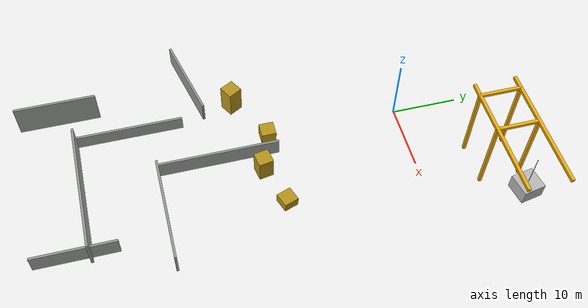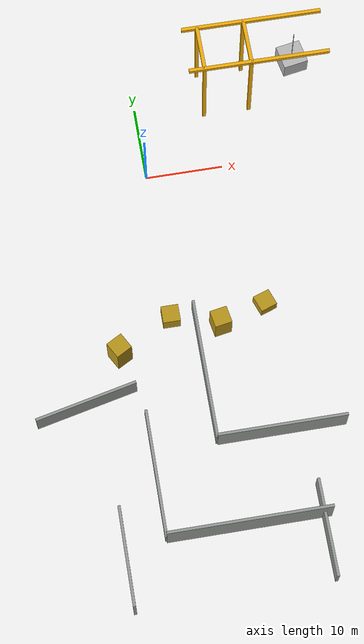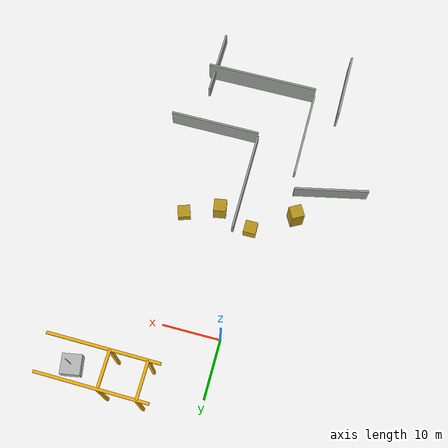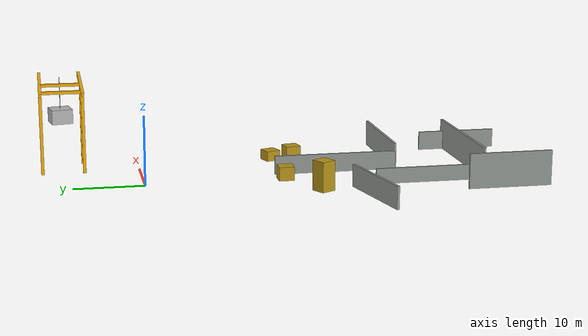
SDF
<sdf version="1.6">
 <world name="uav_complex_120m">
  <model name="concrete_maze">
   <static>true</static>
   <link name="wall_0">
    <pose>3 -28 1.35 0 0 0</pose>
    <collision name="collision">
     <geometry><box><size>0.35 18 2.7</size></box></geometry>
     <laser_retro>100</laser_retro>
     <surface><friction><ode><mu>1.0</mu><mu2>1.0</mu2></ode></friction></surface>
    </collision>
    <visual name="visual">
     <geometry><box><size>0.35 18 2.7</size></box></geometry>
     <material>
      <ambient>0.58 0.6 0.58 1</ambient>
      <diffuse>0.58 0.6 0.58 1</diffuse>
      <specular>0.08 0.08 0.08 1</specular>
     </material>
    </visual>
   </link>
   <link name="wall_1">
    <pose>11 -37 1.9 0 0 0</pose>
    <collision name="collision">
     <geometry><box><size>16 0.35 3.8</size></box></geometry>
     <laser_retro>100</laser_retro>
     <surface><friction><ode><mu>1.0</mu><mu2>1.0</mu2></ode></friction></surface>
    </collision>
    <visual name="visual">
     <geometry><box><size>16 0.35 3.8</size></box></geometry>
     <material>
      <ambient>0.58 0.6 0.58 1</ambient>
      <diffuse>0.58 0.6 0.58 1</diffuse>
      <specular>0.08 0.08 0.08 1</specular>
     </material>
    </visual>
   </link>
   <link name="wall_2">
    <pose>-5 -40 1.1 0 0 0</pose>
    <collision name="collision">
     <geometry><box><size>0.35 16 2.2</size></box></geometry>
     <laser_retro>100</laser_retro>
     <surface><friction><ode><mu>1.0</mu><mu2>1.0</mu2></ode></friction></surface>
    </collision>
    <visual name="visual">
     <geometry><box><size>0.35 16 2.2</size></box></geometry>
     <material>
      <ambient>0.58 0.6 0.58 1</ambient>
      <diffuse>0.58 0.6 0.58 1</diffuse>
      <specular>0.08 0.08 0.08 1</specular>
     </material>
    </visual>
   </link>
   <link name="wall_3">
    <pose>5 -48 2.25 0 0 0</pose>
    <collision name="collision">
     <geometry><box><size>20 0.35 4.5</size></box></geometry>
     <laser_retro>100</laser_retro>
     <surface><friction><ode><mu>1.0</mu><mu2>1.0</mu2></ode></friction></surface>
    </collision>
    <visual name="visual">
     <geometry><box><size>20 0.35 4.5</size></box></geometry>
     <material>
      <ambient>0.58 0.6 0.58 1</ambient>
      <diffuse>0.58 0.6 0.58 1</diffuse>
      <specular>0.08 0.08 0.08 1</specular>
     </material>
    </visual>
   </link>
   <link name="wall_4">
    <pose>14 -50 1.4 0 0 0</pose>
    <collision name="collision">
     <geometry><box><size>0.35 12 2.8</size></box></geometry>
     <laser_retro>100</laser_retro>
     <surface><friction><ode><mu>1.0</mu><mu2>1.0</mu2></ode></friction></surface>
    </collision>
    <visual name="visual">
     <geometry><box><size>0.35 12 2.8</size></box></geometry>
     <material>
      <ambient>0.58 0.6 0.58 1</ambient>
      <diffuse>0.58 0.6 0.58 1</diffuse>
      <specular>0.08 0.08 0.08 1</specular>
     </material>
    </visual>
   </link>
   <link name="wall_5">
    <pose>-12 -30 1.6 0 0 0.22</pose>
    <collision name="collision">
     <geometry><box><size>13 0.35 3.2</size></box></geometry>
     <laser_retro>100</laser_retro>
     <surface><friction><ode><mu>1.0</mu><mu2>1.0</mu2></ode></friction></surface>
    </collision>
    <visual name="visual">
     <geometry><box><size>13 0.35 3.2</size></box></geometry>
     <material>
      <ambient>0.58 0.6 0.58 1</ambient>
      <diffuse>0.58 0.6 0.58 1</diffuse>
      <specular>0.08 0.08 0.08 1</specular>
     </material>
    </visual>
   </link>
   <link name="wall_6">
    <pose>-10 -50 2.5 0 0 0</pose>
    <collision name="collision">
     <geometry><box><size>0.35 12 5</size></box></geometry>
     <laser_retro>100</laser_retro>
     <surface><friction><ode><mu>1.0</mu><mu2>1.0</mu2></ode></friction></surface>
    </collision>
    <visual name="visual">
     <geometry><box><size>0.35 12 5</size></box></geometry>
     <material>
      <ambient>0.58 0.6 0.58 1</ambient>
      <diffuse>0.58 0.6 0.58 1</diffuse>
      <specular>0.08 0.08 0.08 1</specular>
     </material>
    </visual>
   </link>
  </model>
  <model name="maze_block_0">
   <static>true</static>
   <link name="body">
    <pose>0 -20 1 0 0 0</pose>
    <collision name="collision">
     <geometry><box><size>2.2 2.2 2</size></box></geometry>
     <laser_retro>100</laser_retro>
     <surface><friction><ode><mu>1.0</mu><mu2>1.0</mu2></ode></friction></surface>
    </collision>
    <visual name="visual">
     <geometry><box><size>2.2 2.2 2</size></box></geometry>
     <material>
      <ambient>0.72 0.58 0.1 1</ambient>
      <diffuse>0.72 0.58 0.1 1</diffuse>
      <specular>0.08 0.08 0.08 1</specular>
     </material>
    </visual>
   </link>
  </model>
  <model name="maze_block_1">
   <static>true</static>
   <link name="body">
    <pose>6 -22 1.75 0 0 0.17</pose>
    <collision name="collision">
     <geometry><box><size>2.2 2.2 3.5</size></box></geometry>
     <laser_retro>100</laser_retro>
     <surface><friction><ode><mu>1.0</mu><mu2>1.0</mu2></ode></friction></surface>
    </collision>
    <visual name="visual">
     <geometry><box><size>2.2 2.2 3.5</size></box></geometry>
     <material>
      <ambient>0.72 0.58 0.1 1</ambient>
      <diffuse>0.72 0.58 0.1 1</diffuse>
      <specular>0.08 0.08 0.08 1</specular>
     </material>
    </visual>
   </link>
  </model>
  <model name="maze_block_2">
   <static>true</static>
   <link name="body">
    <pose>12 -20 0.75 0 0 0.34</pose>
    <collision name="collision">
     <geometry><box><size>2.2 2.2 1.5</size></box></geometry>
     <laser_retro>100</laser_retro>
     <surface><friction><ode><mu>1.0</mu><mu2>1.0</mu2></ode></friction></surface>
    </collision>
    <visual name="visual">
     <geometry><box><size>2.2 2.2 1.5</size></box></geometry>
     <material>
      <ambient>0.72 0.58 0.1 1</ambient>
      <diffuse>0.72 0.58 0.1 1</diffuse>
      <specular>0.08 0.08 0.08 1</specular>
     </material>
    </visual>
   </link>
  </model>
  <model name="maze_block_3">
   <static>true</static>
   <link name="body">
    <pose>-7 -24 2.15 0 0 0.51</pose>
    <collision name="collision">
     <geometry><box><size>2.2 2.2 4.3</size></box></geometry>
     <laser_retro>100</laser_retro>
     <surface><friction><ode><mu>1.0</mu><mu2>1.0</mu2></ode></friction></surface>
    </collision>
    <visual name="visual">
     <geometry><box><size>2.2 2.2 4.3</size></box></geometry>
     <material>
      <ambient>0.72 0.58 0.1 1</ambient>
      <diffuse>0.72 0.58 0.1 1</diffuse>
      <specular>0.08 0.08 0.08 1</specular>
     </material>
    </visual>
   </link>
  </model>
  <model name="construction_crane">
   <static>true</static>
   <link name="leg_0">
    <pose>9 8 6 0 0 0</pose>
    <collision name="collision">
     <geometry><box><size>0.45 0.45 12</size></box></geometry>
     <laser_retro>100</laser_retro>
     <surface><friction><ode><mu>1.0</mu><mu2>1.0</mu2></ode></friction></surface>
    </collision>
    <visual name="visual">
     <geometry><box><size>0.45 0.45 12</size></box></geometry>
     <material>
      <ambient>0.95 0.68 0.04 1</ambient>
      <diffuse>0.95 0.68 0.04 1</diffuse>
      <specular>0.08 0.08 0.08 1</specular>
     </material>
    </visual>
   </link>
   <link name="leg_1">
    <pose>15 8 6 0 0 0</pose>
    <collision name="collision">
     <geometry><box><size>0.45 0.45 12</size></box></geometry>
     <laser_retro>100</laser_retro>
     <surface><friction><ode><mu>1.0</mu><mu2>1.0</mu2></ode></friction></surface>
    </collision>
    <visual name="visual">
     <geometry><box><size>0.45 0.45 12</size></box></geometry>
     <material>
      <ambient>0.95 0.68 0.04 1</ambient>
      <diffuse>0.95 0.68 0.04 1</diffuse>
      <specular>0.08 0.08 0.08 1</specular>
     </material>
    </visual>
   </link>
   <link name="leg_2">
    <pose>9 14 6 0 0 0</pose>
    <collision name="collision">
     <geometry><box><size>0.45 0.45 12</size></box></geometry>
     <laser_retro>100</laser_retro>
     <surface><friction><ode><mu>1.0</mu><mu2>1.0</mu2></ode></friction></surface>
    </collision>
    <visual name="visual">
     <geometry><box><size>0.45 0.45 12</size></box></geometry>
     <material>
      <ambient>0.95 0.68 0.04 1</ambient>
      <diffuse>0.95 0.68 0.04 1</diffuse>
      <specular>0.08 0.08 0.08 1</specular>
     </material>
    </visual>
   </link>
   <link name="leg_3">
    <pose>15 14 6 0 0 0</pose>
    <collision name="collision">
     <geometry><box><size>0.45 0.45 12</size></box></geometry>
     <laser_retro>100</laser_retro>
     <surface><friction><ode><mu>1.0</mu><mu2>1.0</mu2></ode></friction></surface>
    </collision>
    <visual name="visual">
     <geometry><box><size>0.45 0.45 12</size></box></geometry>
     <material>
      <ambient>0.95 0.68 0.04 1</ambient>
      <diffuse>0.95 0.68 0.04 1</diffuse>
      <specular>0.08 0.08 0.08 1</specular>
     </material>
    </visual>
   </link>
   <link name="top_x1">
    <pose>16 8 12 0 0 0</pose>
    <collision name="collision">
     <geometry><box><size>18 0.45 0.45</size></box></geometry>
     <laser_retro>100</laser_retro>
     <surface><friction><ode><mu>1.0</mu><mu2>1.0</mu2></ode></friction></surface>
    </collision>
    <visual name="visual">
     <geometry><box><size>18 0.45 0.45</size></box></geometry>
     <material>
      <ambient>0.95 0.68 0.04 1</ambient>
      <diffuse>0.95 0.68 0.04 1</diffuse>
      <specular>0.08 0.08 0.08 1</specular>
     </material>
    </visual>
   </link>
   <link name="top_x2">
    <pose>16 14 12 0 0 0</pose>
    <collision name="collision">
     <geometry><box><size>18 0.45 0.45</size></box></geometry>
     <laser_retro>100</laser_retro>
     <surface><friction><ode><mu>1.0</mu><mu2>1.0</mu2></ode></friction></surface>
    </collision>
    <visual name="visual">
     <geometry><box><size>18 0.45 0.45</size></box></geometry>
     <material>
      <ambient>0.95 0.68 0.04 1</ambient>
      <diffuse>0.95 0.68 0.04 1</diffuse>
      <specular>0.08 0.08 0.08 1</specular>
     </material>
    </visual>
   </link>
   <link name="top_y1">
    <pose>9 11 12 0 0 0</pose>
    <collision name="collision">
     <geometry><box><size>0.45 6 0.45</size></box></geometry>
     <laser_retro>100</laser_retro>
     <surface><friction><ode><mu>1.0</mu><mu2>1.0</mu2></ode></friction></surface>
    </collision>
    <visual name="visual">
     <geometry><box><size>0.45 6 0.45</size></box></geometry>
     <material>
      <ambient>0.95 0.68 0.04 1</ambient>
      <diffuse>0.95 0.68 0.04 1</diffuse>
      <specular>0.08 0.08 0.08 1</specular>
     </material>
    </visual>
   </link>
   <link name="top_y2">
    <pose>15 11 12 0 0 0</pose>
    <collision name="collision">
     <geometry><box><size>0.45 6 0.45</size></box></geometry>
     <laser_retro>100</laser_retro>
     <surface><friction><ode><mu>1.0</mu><mu2>1.0</mu2></ode></friction></surface>
    </collision>
    <visual name="visual">
     <geometry><box><size>0.45 6 0.45</size></box></geometry>
     <material>
      <ambient>0.95 0.68 0.04 1</ambient>
      <diffuse>0.95 0.68 0.04 1</diffuse>
      <specular>0.08 0.08 0.08 1</specular>
     </material>
    </visual>
   </link>
   <link name="suspended_load">
    <pose>21 11 6.2 0 0 0.18</pose>
    <collision name="collision">
     <geometry><box><size>3.2 3.2 2.2</size></box></geometry>
     <laser_retro>100</laser_retro>
     <surface><friction><ode><mu>1.0</mu><mu2>1.0</mu2></ode></friction></surface>
    </collision>
    <visual name="visual">
     <geometry><box><size>3.2 3.2 2.2</size></box></geometry>
     <material>
      <script>
       <uri>model://uav_complex_scene/materials/scripts</uri>
       <uri>model://uav_complex_scene/materials/textures</uri>
       <name>UAVComplex/RustedSteel</name>
      </script>
     </material>
    </visual>
   </link>
   <link name="load_cable">
    <pose>21 11 9.7 0 0 0</pose>
    <collision name="collision">
     <geometry><cylinder><radius>0.045</radius><length>4.8</length></cylinder></geometry>
     <laser_retro>100</laser_retro>
     <surface><friction><ode><mu>1.0</mu><mu2>1.0</mu2></ode></friction></surface>
    </collision>
    <visual name="visual">
     <geometry><cylinder><radius>0.045</radius><length>4.8</length></cylinder></geometry>
     <material>
      <ambient>0.04 0.04 0.04 1</ambient>
      <diffuse>0.04 0.04 0.04 1</diffuse>
      <specular>0.08 0.08 0.08 1</specular>
     </material>
    </visual>
   </link>
  </model>
 </world>
</sdf>
